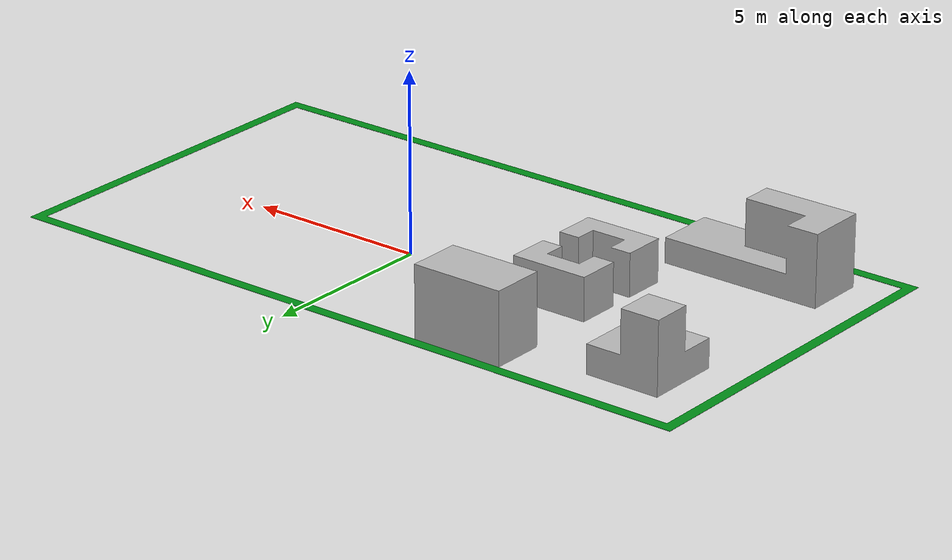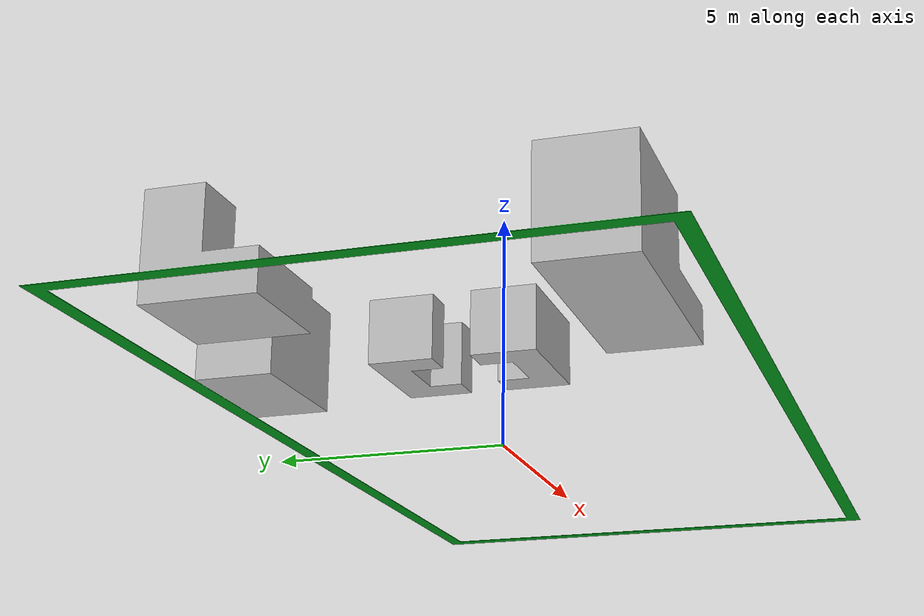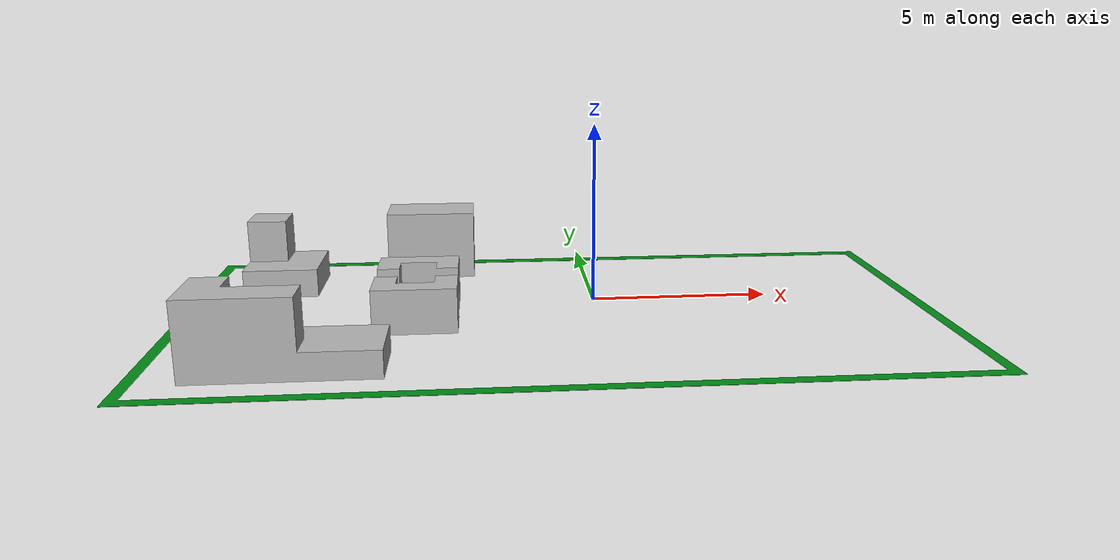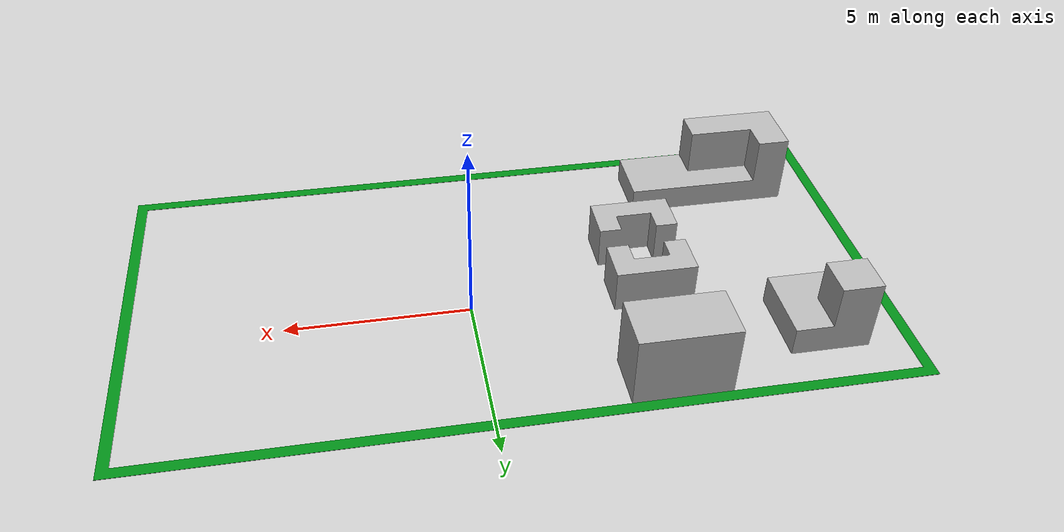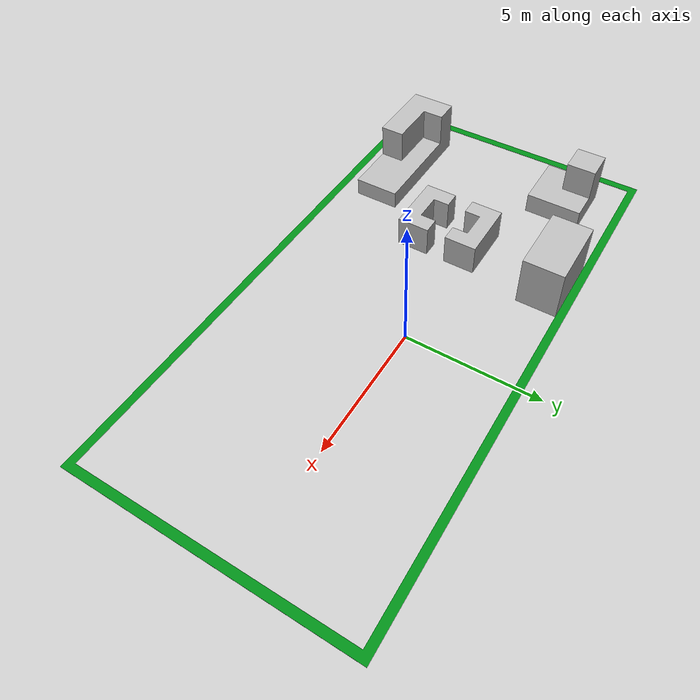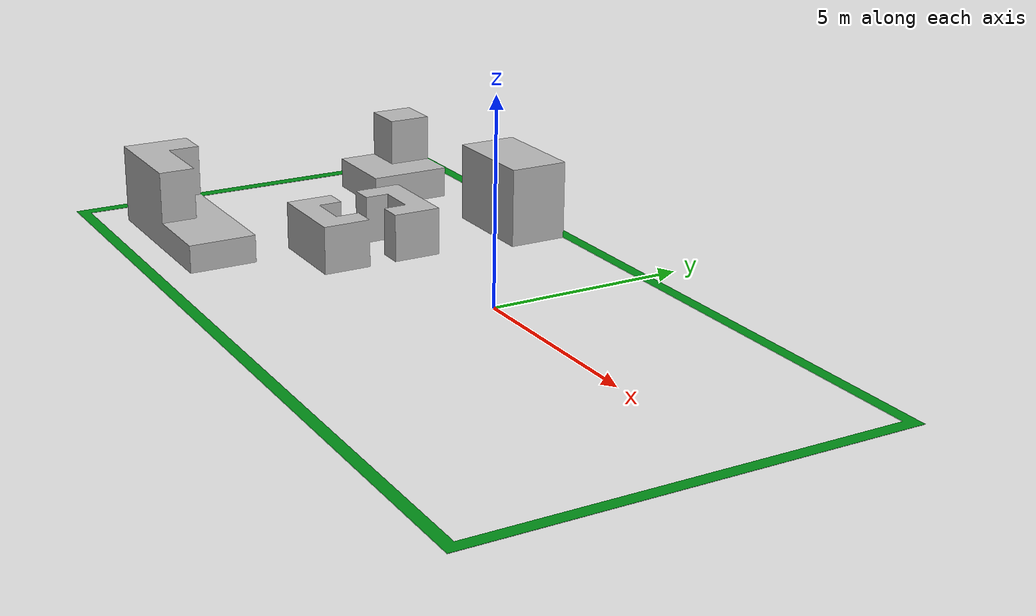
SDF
<?xml version='1.0'?>
<sdf version='1.5'>
  <model name='competition_field'>
    <static>true</static>
    <link name="campo">
        <collision name="collision">
            <geometry>
                <mesh>
                    <uri>model://competition_field/meshes/competition_field.dae</uri>
                </mesh>
            </geometry>
        </collision>
        <visual name="visual">
            <geometry>
                <mesh>
                    <uri>model://competition_field/meshes/competition_field.dae</uri>
                </mesh>
            </geometry>
        </visual>
    </link>
  </model>
</sdf>
